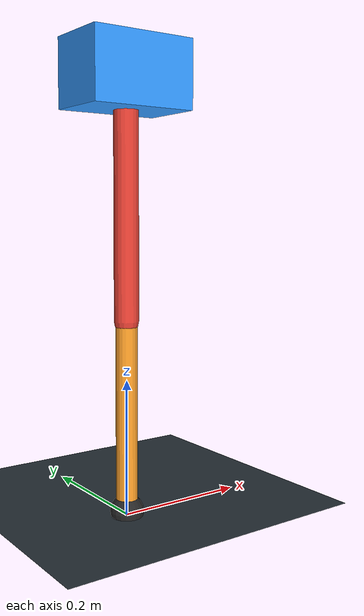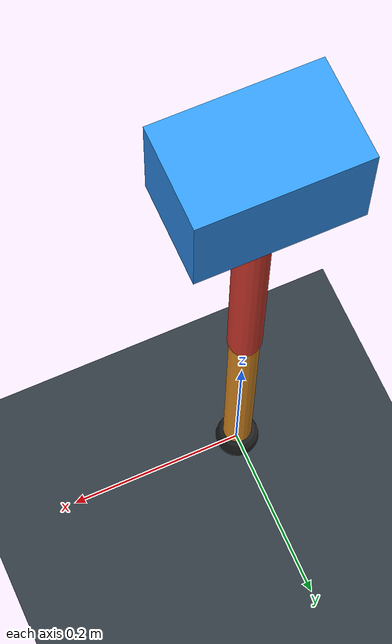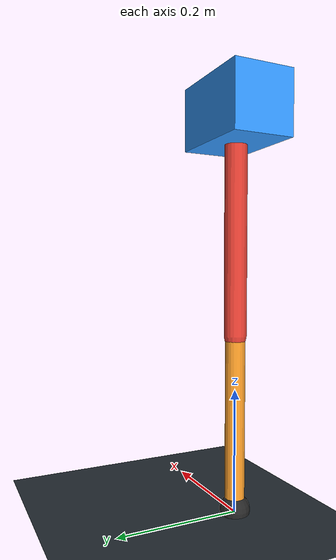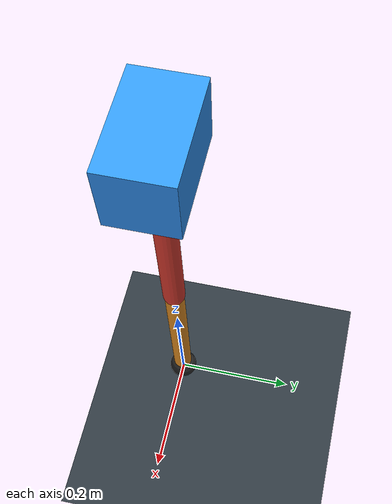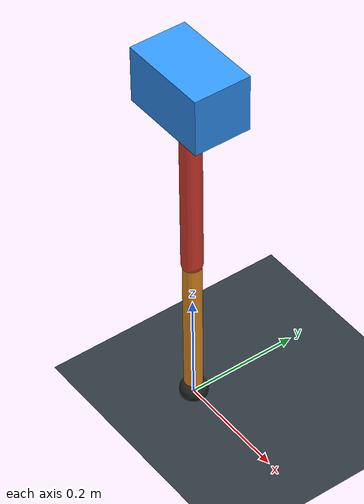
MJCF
<mujoco model="single_axis_two_bar">
  <compiler angle="radian" inertiafromgeom="true"/>
  <option timestep="0.001" integrator="implicitfast" gravity="0 0 -9.81"/>
  <default>
    <joint damping="0.08"/>
    <geom friction="1.2 0.01 0.0001" condim="3"/>
  </default>
  <worldbody>
    <geom name="floor" type="plane" size="5 5 0.1" rgba="0.18 0.22 0.25 1"/>
    <body name="carriage" pos="0 0 0.6367487562844006">
      <joint name="pole_slide" type="slide" axis="0 0 1"/>
      <geom name="payload" type="box" size="0.08 0.05 0.05" mass="2.3913802115125797" rgba="0.2 0.6 1 1"/>
      <body name="thigh" pos="0 0 0">
        <joint name="hip" type="hinge" axis="0 1 0"/>
        <geom name="thigh_link" type="capsule" fromto="0 0 0 0 0 -0.34990532022364507" size="0.018" mass="0.249312164250222" rgba="0.9 0.25 0.2 1"/>
        <body name="shank" pos="0 0 -0.34990532022364507">
          <joint name="knee" type="hinge" axis="0 1 0"/>
          <geom name="shank_link" type="capsule" fromto="0 0 0 0 0 -0.2807635006881081" size="0.016" mass="0.20004770420261472" rgba="0.95 0.6 0.15 1"/>
          <geom name="foot" type="sphere" pos="0 0 -0.2807635006881081" size="0.025" mass="0.03" rgba="0.15 0.15 0.15 1"/>
          <site name="toe" pos="0 0 -0.2807635006881081" size="0.008"/>
        </body>
      </body>
    </body>
  </worldbody>
  <actuator>
    <motor name="hip_motor" joint="hip" ctrlrange="-38.371729344345 38.371729344345"/>
    <motor name="knee_motor" joint="knee" ctrlrange="-104.15644414870367 104.15644414870367"/>
  </actuator>
</mujoco>
